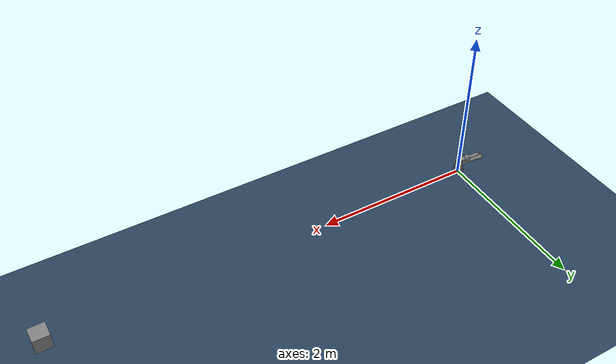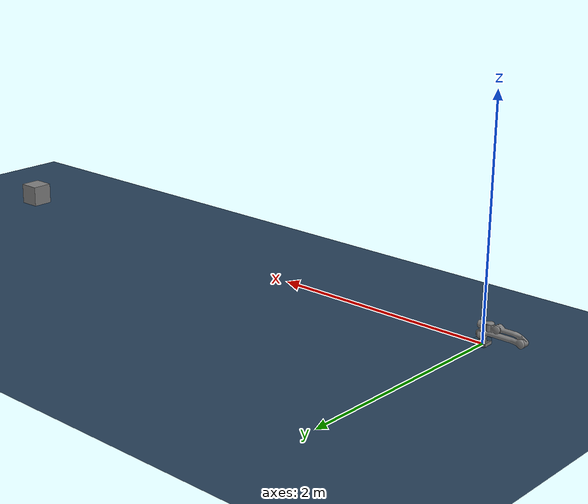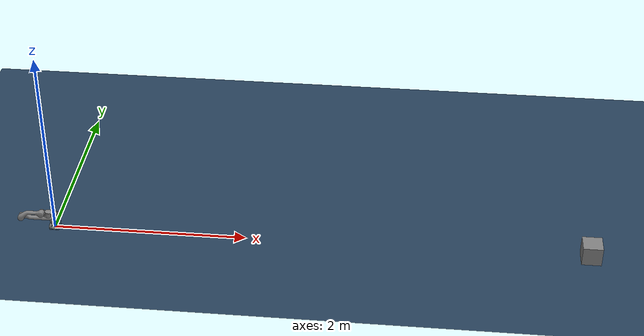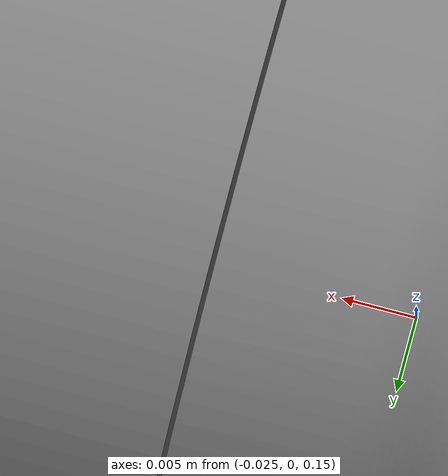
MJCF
<mujoco model="z1 scene">
  <include file="z1.xml"/>

  <statistic center="0 0 0.1" extent="0.6"/>

  <visual>
    <headlight diffuse="0.6 0.6 0.6" ambient="0.3 0.3 0.3" specular="0 0 0"/>
    <rgba haze="0.15 0.25 0.35 1"/>
    <global azimuth="120" elevation="-20"/>
  </visual>

  <asset>
    <texture type="skybox" builtin="gradient" rgb1="0.3 0.5 0.7" rgb2="0 0 0" width="512" height="3072"/>
    <texture type="2d" name="groundplane" builtin="checker" mark="edge" rgb1="0.2 0.3 0.4" rgb2="0.1 0.2 0.3"
      markrgb="0.8 0.8 0.8" width="300" height="300"/>
    <material name="groundplane" texture="groundplane" texuniform="true" texrepeat="5 5" reflectance="0.2"/>
  </asset>

  <worldbody>
    <light pos="0 0 1.5" dir="0 0 -1" directional="true"/>
    <geom name="floor" size="0 0 0.05" type="plane" material="groundplane"/>

    <body name="target" pos="0 0 0" quat="0 1 0 0" mocap="true">
      <geom type="box"  size=".05 .05 .05" contype="0" conaffinity="0" rgba=".2 .3 .3 .2"/>
    </body>
    <body name="wall" pos="5.5 0 0.1">
      <geom name="wall" type="box" size=".1 .1 .1"/>
    </body>
  </worldbody>

  <sensor>
    <fromto geom1="link06" geom2="wall" cutoff="1"/>
    <fromto geom1="link06" geom2="floor" cutoff="1"/>
  </sensor>
</mujoco>

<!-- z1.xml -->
<mujoco model="z1">
  <compiler angle="radian" meshdir="assets"/>

  <option integrator="implicitfast"/>

  <default>
    <default class="z1">
      <joint damping="1" frictionloss="1"/>
      <general biastype="affine" gainprm="1000" biasprm="0 -1000 -100" forcerange="-30 30"/>
      <default class="visual">
        <geom type="mesh" group="2" contype="0" conaffinity="0"/>
      </default>
      <default class="collision">
        <geom type="cylinder" group="3" mass="0" density="0"/>
      </default>
    </default>
  </default>

  <asset>
    <mesh file="z1_Link00.stl"/>
    <mesh file="z1_Link01.stl"/>
    <mesh file="z1_Link02.stl"/>
    <mesh file="z1_Link03.stl"/>
    <mesh file="z1_Link04.stl"/>
    <mesh file="z1_Link05.stl"/>
    <mesh file="z1_Link06.stl"/>
  </asset>

  <worldbody>
    <body name="link00" childclass="z1">
      <inertial pos="-0.00334984 -0.00013615 0.0249584" quat="-0.00692194 0.682592 0.00133293 0.730766" mass="0.472475"
        diaginertia="0.000531375 0.000415207 0.000378658"/>
      <geom class="visual" mesh="z1_Link00"/>
      <geom size="0.0325 0.0255" pos="0 0 0.0255" class="collision"/>
      <body name="link01" pos="0 0 0.0585">
        <inertial pos="2.47e-06 -0.00025198 0.0231717" quat="0.708578 0.705633 0.000281462 -0.000355927" mass="0.673326"
          diaginertia="0.00128328 0.000839362 0.000719308"/>
        <joint name="joint1" axis="0 0 1" range="-2.61799 2.61799"/>
        <geom class="visual" mesh="z1_Link01"/>
        <body name="link02" pos="0 0 0.045">
          <inertial pos="-0.110126 0.00240029 0.00158266" quat="0.00748058 0.707092 -0.0114473 0.70699" mass="1.19132"
            diaginertia="0.0246612 0.0243113 0.00100468"/>
          <joint name="joint2" axis="0 1 0" range="0 2.96706" damping="2"/>
          <geom class="visual" mesh="z1_Link02"/>
          <geom size="0.0325 0.051" quat="1 1 0 0" class="collision"/>
          <geom size="0.0225 0.1175" pos="-0.1625 0 0" quat="1 0 1 0" class="collision"/>
          <geom size="0.0325 0.0255" pos="-0.35 0 0" quat="1 1 0 0" class="collision"/>
          <body name="link03" pos="-0.35 0 0">
            <inertial pos="0.106092 -0.00541815 0.0347638" quat="0.540557 0.443575 0.426319 0.573839" mass="0.839409"
              diaginertia="0.00954365 0.00938711 0.000558432"/>
            <joint name="joint3" axis="0 1 0" range="-2.87979 0"/>
            <geom class="visual" mesh="z1_Link03"/>
            <geom size="0.02 0.058" pos="0.128 0 0.055" quat="1 0 1 0" class="collision"/>
            <geom size="0.0325 0.0295" pos="0.2205 0 0.055" quat="0.5 -0.5 0.5 0.5" class="collision"/>
            <body name="link04" pos="0.218 0 0.057">
              <inertial pos="0.0436668 0.00364738 -0.00170192" quat="0.0390835 0.726445 -0.0526787 0.684087"
                mass="0.564046" diaginertia="0.000981656 0.00094053 0.000302655"/>
              <joint name="joint4" axis="0 1 0" range="-1.51844 1.51844"/>
              <geom class="visual" mesh="z1_Link04"/>
              <geom size="0.0325 0.0335" pos="0.072 0 0" class="collision"/>
              <body name="link05" pos="0.07 0 0">
                <inertial pos="0.0312153 0 0.00646316" quat="0.462205 0.535209 0.53785 0.45895" mass="0.389385"
                  diaginertia="0.000558961 0.000547317 0.000167332"/>
                <joint name="joint5" axis="0 0 1" range="-1.3439 1.3439"/>
                <geom class="visual" mesh="z1_Link05"/>
                <body name="link06" pos="0.0492 0 0">
                  <inertial pos="0.0241569 -0.00017355 -0.00143876" quat="0.998779 0.0457735 -0.00663717 0.0173548"
                    mass="0.288758" diaginertia="0.00018333 0.000147464 0.000146786"/>
                  <joint name="joint6" axis="1 0 0" range="-2.79253 2.79253"/>

                  <site name="attachment_site" size="0.01" pos="0 0 0" quat="-1 1 1 1" rgba="1 0 0 1" group="1"/>
                  <geom class="visual" mesh="z1_Link06"/>
                  <geom name="link06" size="0.0325 0.0255" pos="0.0255 0 0" quat="1 0 1 0" class="collision"/>

                </body>
              </body>
            </body>
          </body>
        </body>
      </body>
    </body>
  </worldbody>

  <actuator>
    <general class="z1" name="motor1" joint="joint1" ctrlrange="-2.61799 2.61799"/>
    <general class="z1" name="motor2" joint="joint2" ctrlrange="0 2.96706" forcerange="-60 60" gainprm="1500"
      biasprm="0 -1500 -150"/>
    <general class="z1" name="motor3" joint="joint3" ctrlrange="-2.87979 0"/>
    <general class="z1" name="motor4" joint="joint4" ctrlrange="-1.51844 1.51844"/>
    <general class="z1" name="motor5" joint="joint5" ctrlrange="-1.3439 1.3439"/>
    <general class="z1" name="motor6" joint="joint6" ctrlrange="-2.79253 2.79253"/>
  </actuator>

  <keyframe>
    <key name="home" qpos="0 0.785 -0.261 -0.523 0 0" ctrl="0 0.785 -0.261 -0.523 0 0"/>
  </keyframe>
</mujoco>
